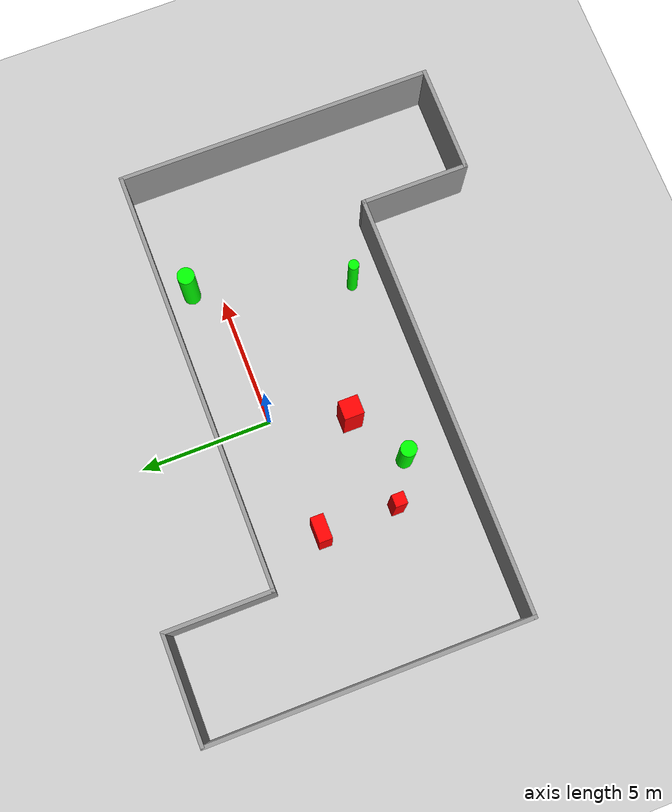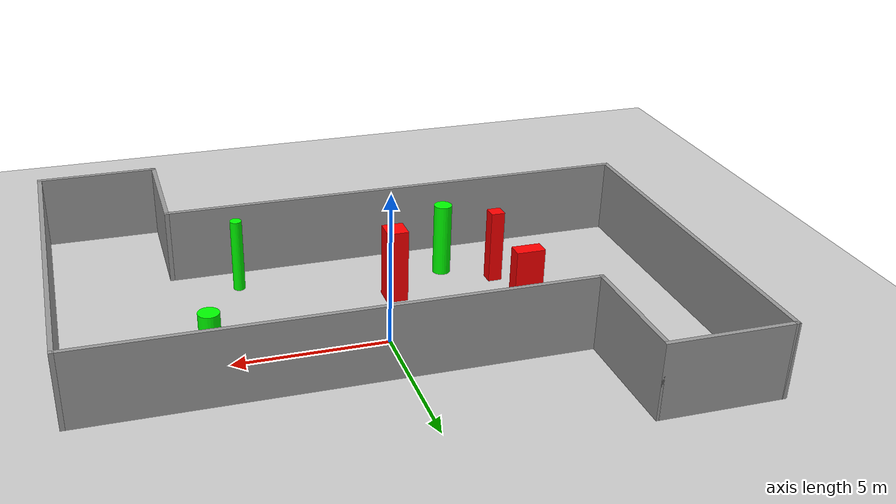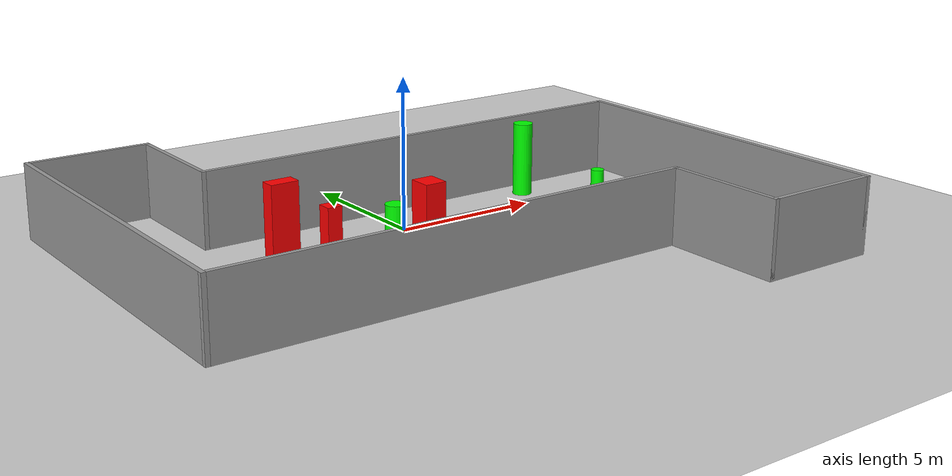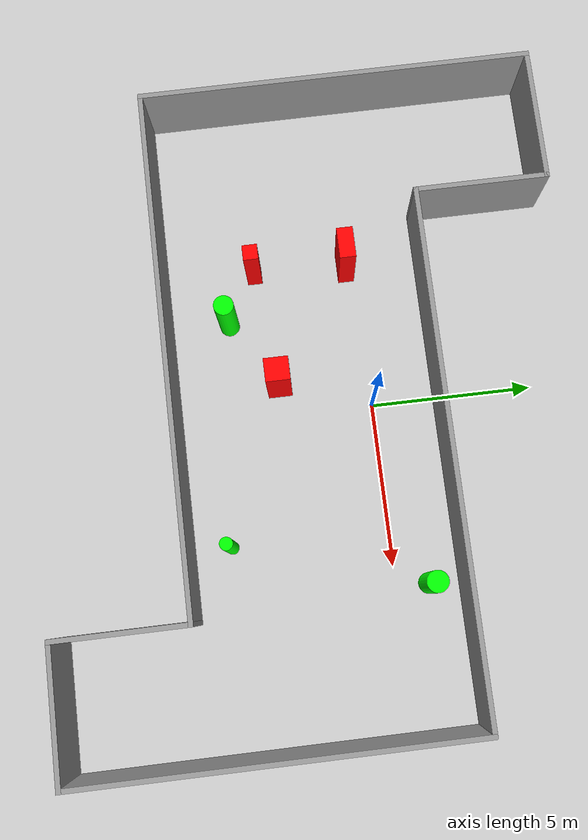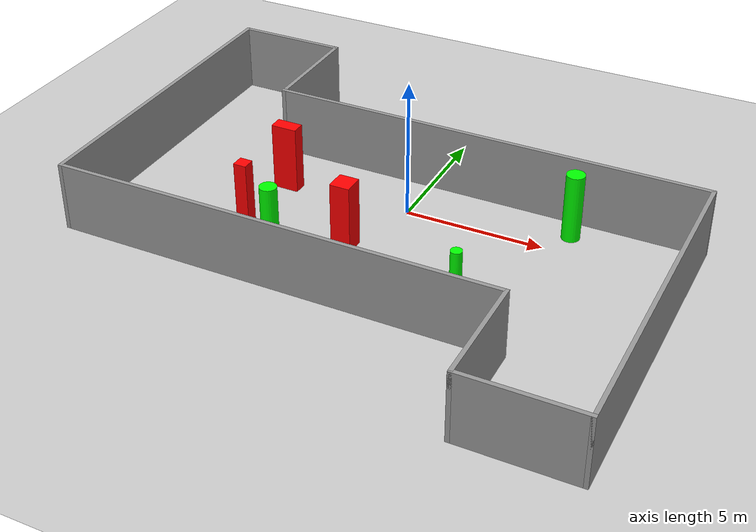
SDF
<sdf version="1.7">
 <world name="default">
  <light name="sun" type="directional">
   <pose>0 0 10 0 -0 0</pose>
   <diffuse>0.8 0.8 0.8 1</diffuse>
   <specular>0.2 0.2 0.2 1</specular>
   <attenuation>
    <range>1000</range>
    <constant>0.9</constant>
    <linear>0.01</linear>
    <quadratic>0.001</quadratic>
   </attenuation>
   <direction>-0.5 0.1 -0.9</direction>
   <spot><inner_angle>0</inner_angle><outer_angle>0</outer_angle><falloff>0</falloff></spot>
  </light>
  <model name="ground_plane">
   <static>1</static>
   <link name="link">
    <collision name="collision">
     <geometry><plane><normal>0 0 1</normal><size>100 100</size></plane></geometry>
     <surface>
      <contact><collide_bitmask>65535</collide_bitmask></contact>
      <friction><ode><mu>100</mu><mu2>50</mu2></ode></friction>
     </surface>
    </collision>
    <visual name="visual">
     <cast_shadows>0</cast_shadows>
     <geometry><plane><normal>0 0 1</normal><size>100 100</size></plane></geometry>
     <material>
      <script><uri>file://media/materials/scripts/gazebo.material</uri><name>Gazebo/Grey</name></script>
     </material>
    </visual>
   </link>
  </model>
  <gravity>0 0 -9.8</gravity>
  <magnetic_field>6e-06 2.3e-05 -4.2e-05</magnetic_field>
  <atmosphere type="adiabatic"/>
  <physics type="ode">
   <max_step_size>0.001</max_step_size>
   <real_time_factor>1</real_time_factor>
   <real_time_update_rate>1000</real_time_update_rate>
  </physics>
  <scene><ambient>0.4 0.4 0.4 1</ambient><background>0.7 0.7 0.7 1</background><shadows>1</shadows></scene>
  <spherical_coordinates>
   <surface_model>EARTH_WGS84</surface_model>
   <latitude_deg>0</latitude_deg>
   <longitude_deg>0</longitude_deg>
   <elevation>0</elevation>
   <heading_deg>0</heading_deg>
  </spherical_coordinates>
  <model name="my_base_walls">
   <link name="Wall_13">
    <collision name="Wall_13_Collision">
     <geometry><box><size>12.15 0.15 2.5</size></box></geometry>
     <pose>0 0 1.25 0 -0 0</pose>
    </collision>
    <visual name="Wall_13_Visual">
     <pose>0 0 1.25 0 -0 0</pose>
     <geometry><box><size>12.15 0.15 2.5</size></box></geometry>
     <material>
      <script><uri>file://media/materials/scripts/gazebo.material</uri><name>Gazebo/Grey</name></script>
      <ambient>1 1 1 1</ambient>
     </material>
     <meta><layer>0</layer></meta>
    </visual>
    <pose>10 -2 0 0 -0 1.5708</pose>
   </link>
   <link name="Wall_15">
    <collision name="Wall_15_Collision">
     <geometry><box><size>16.15 0.15 2.5</size></box></geometry>
     <pose>0 0 1.25 0 -0 0</pose>
    </collision>
    <visual name="Wall_15_Visual">
     <pose>0 0 1.25 0 -0 0</pose>
     <geometry><box><size>16.15 0.15 2.5</size></box></geometry>
     <material>
      <script><uri>file://media/materials/scripts/gazebo.material</uri><name>Gazebo/Grey</name></script>
      <ambient>1 1 1 1</ambient>
     </material>
     <meta><layer>0</layer></meta>
    </visual>
    <pose>2 4 0 0 -0 3.14159</pose>
   </link>
   <link name="Wall_17">
    <collision name="Wall_17_Collision">
     <geometry><box><size>4.15 0.15 2.5</size></box></geometry>
     <pose>0 0 1.25 0 -0 0</pose>
    </collision>
    <visual name="Wall_17_Visual">
     <pose>0 0 1.25 0 -0 0</pose>
     <geometry><box><size>4.15 0.15 2.5</size></box></geometry>
     <material>
      <script><uri>file://media/materials/scripts/gazebo.material</uri><name>Gazebo/Grey</name></script>
      <ambient>1 1 1 1</ambient>
     </material>
     <meta><layer>0</layer></meta>
    </visual>
    <pose>6 -6 0 0 -0 -1.5708</pose>
   </link>
   <link name="Wall_19">
    <collision name="Wall_19_Collision">
     <geometry><box><size>12.15 0.15 2.5</size></box></geometry>
     <pose>0 0 1.25 0 -0 0</pose>
    </collision>
    <visual name="Wall_19_Visual">
     <pose>0 0 1.25 0 -0 0</pose>
     <geometry><box><size>12.15 0.15 2.5</size></box></geometry>
     <material>
      <script><uri>file://media/materials/scripts/gazebo.material</uri><name>Gazebo/Grey</name></script>
      <ambient>1 1 1 1</ambient>
     </material>
     <meta><layer>0</layer></meta>
    </visual>
    <pose>-10 2 0 0 -0 1.5708</pose>
   </link>
   <link name="Wall_21">
    <collision name="Wall_21_Collision">
     <geometry><box><size>4.15 0.15 2.5</size></box></geometry>
     <pose>0 0 1.25 0 -0 0</pose>
    </collision>
    <visual name="Wall_21_Visual">
     <pose>0 0 1.25 0 -0 0</pose>
     <geometry><box><size>4.15 0.15 2.5</size></box></geometry>
     <material>
      <script><uri>file://media/materials/scripts/gazebo.material</uri><name>Gazebo/Grey</name></script>
      <ambient>1 1 1 1</ambient>
     </material>
     <meta><layer>0</layer></meta>
    </visual>
    <pose>-8 8 0 0 -0 0</pose>
   </link>
   <link name="Wall_23">
    <collision name="Wall_23_Collision">
     <geometry><box><size>4.15 0.15 2.5</size></box></geometry>
     <pose>0 0 1.25 0 -0 0</pose>
    </collision>
    <visual name="Wall_23_Visual">
     <pose>0 0 1.25 0 -0 0</pose>
     <geometry><box><size>4.15 0.15 2.5</size></box></geometry>
     <material>
      <script><uri>file://media/materials/scripts/gazebo.material</uri><name>Gazebo/Grey</name></script>
      <ambient>1 1 1 1</ambient>
     </material>
     <meta><layer>0</layer></meta>
    </visual>
    <pose>-6 6 0 0 -0 -1.5708</pose>
   </link>
   <link name="Wall_25">
    <collision name="Wall_25_Collision">
     <geometry><box><size>4.15 0.15 2.5</size></box></geometry>
     <pose>0 0 1.25 0 -0 0</pose>
    </collision>
    <visual name="Wall_25_Visual">
     <pose>0 0 1.25 0 -0 0</pose>
     <geometry><box><size>4.15 0.15 2.5</size></box></geometry>
     <material>
      <script><uri>file://media/materials/scripts/gazebo.material</uri><name>Gazebo/Grey</name></script>
      <ambient>1 1 1 1</ambient>
     </material>
     <meta><layer>0</layer></meta>
    </visual>
    <pose>8 -8 0 0 -0 0</pose>
   </link>
   <link name="Wall_9">
    <collision name="Wall_9_Collision">
     <geometry><box><size>16.15 0.15 2.5</size></box></geometry>
     <pose>0 0 1.25 0 -0 0</pose>
    </collision>
    <visual name="Wall_9_Visual">
     <pose>0 0 1.25 0 -0 0</pose>
     <geometry><box><size>16.15 0.15 2.5</size></box></geometry>
     <material>
      <script><uri>file://media/materials/scripts/gazebo.material</uri><name>Gazebo/Grey</name></script>
      <ambient>1 1 1 1</ambient>
     </material>
     <meta><layer>0</layer></meta>
    </visual>
    <pose>-2 -4 0 0 -0 3.14159</pose>
   </link>
   <static>1</static>
   <pose>-0 -2 0 0 -0 0</pose>
  </model>
  <model name="cylinder1">
   <static>1</static>
   <link name="link">
    <inertial>
     <mass>1</mass>
     <inertia><ixx>0.5</ixx><ixy>0</ixy><ixz>0</ixz><iyy>0.5</iyy><iyz>0</iyz><izz>1</izz></inertia>
    </inertial>
    <collision name="collision">
     <geometry><cylinder><radius>0.3035718407177613</radius><length>2.5</length></cylinder></geometry>
    </collision>
    <visual name="visual">
     <geometry><cylinder><radius>0.3035718407177613</radius><length>2.5</length></cylinder></geometry>
     <material>
      <ambient>0 1 0 1</ambient>
      <diffuse>0 1 0 1</diffuse>
      <specular>0.1 0.1 0.1 1</specular>
      <emissive>0 0 0 0</emissive>
     </material>
    </visual>
   </link>
   <pose>-3.082513961400586 -4.13988296449518 1.25 0 0 0</pose>
  </model>
  <model name="cylinder2">
   <static>1</static>
   <link name="link">
    <inertial>
     <mass>1</mass>
     <inertia><ixx>0.5</ixx><ixy>0</ixy><ixz>0</ixz><iyy>0.5</iyy><iyz>0</iyz><izz>1</izz></inertia>
    </inertial>
    <collision name="collision">
     <geometry><cylinder><radius>0.3250311329631301</radius><length>2.5</length></cylinder></geometry>
    </collision>
    <visual name="visual">
     <geometry><cylinder><radius>0.3250311329631301</radius><length>2.5</length></cylinder></geometry>
     <material>
      <ambient>0 1 0 1</ambient>
      <diffuse>0 1 0 1</diffuse>
      <specular>0.1 0.1 0.1 1</specular>
      <emissive>0 0 0 0</emissive>
     </material>
    </visual>
   </link>
   <pose>5.647744635297391 1.029591821394435 1.25 0 0 0</pose>
  </model>
  <model name="cylinder3">
   <static>1</static>
   <link name="link">
    <inertial>
     <mass>1</mass>
     <inertia><ixx>0.5</ixx><ixy>0</ixy><ixz>0</ixz><iyy>0.5</iyy><iyz>0</iyz><izz>1</izz></inertia>
    </inertial>
    <collision name="collision">
     <geometry><cylinder><radius>0.19764601192029063</radius><length>2.5</length></cylinder></geometry>
    </collision>
    <visual name="visual">
     <geometry><cylinder><radius>0.19764601192029063</radius><length>2.5</length></cylinder></geometry>
     <material>
      <ambient>0 1 0 1</ambient>
      <diffuse>0 1 0 1</diffuse>
      <specular>0.1 0.1 0.1 1</specular>
      <emissive>0 0 0 0</emissive>
     </material>
    </visual>
   </link>
   <pose>3.887006045403421 -4.784416667928466 1.25 0 0 0</pose>
  </model>
  <model name="box1">
   <static>1</static>
   <link name="link">
    <inertial>
     <mass>1</mass>
     <inertia><ixx>0.083</ixx><ixy>0</ixy><ixz>0</ixz><iyy>0.083</iyy><iyz>0</iyz><izz>0.083</izz></inertia>
    </inertial>
    <collision name="collision">
     <geometry><box><size>0.710372053022736 0.7409568018311314 2.5</size></box></geometry>
    </collision>
    <visual name="visual">
     <geometry><box><size>0.710372053022736 0.7409568018311314 2.5</size></box></geometry>
     <material>
      <ambient>1 0 0 1</ambient>
      <diffuse>1 0 0 1</diffuse>
      <specular>0.1 0.1 0.1 1</specular>
      <emissive>0 0 0 0</emissive>
     </material>
    </visual>
    <sensor name="my_contact" type="contact">
     <contact><collision>box_collision</collision><topic>__default_topic__</topic></contact>
    </sensor>
   </link>
   <pose>-0.9862277601458995 -2.7918089571336218 1.25 0 0 0</pose>
  </model>
  <model name="box2">
   <static>1</static>
   <link name="link">
    <inertial>
     <mass>1</mass>
     <inertia><ixx>0.083</ixx><ixy>0</ixy><ixz>0</ixz><iyy>0.083</iyy><iyz>0</iyz><izz>0.083</izz></inertia>
    </inertial>
    <collision name="collision">
     <geometry><box><size>0.935942847304619 0.4945776752229275 2.5</size></box></geometry>
    </collision>
    <visual name="visual">
     <geometry><box><size>0.935942847304619 0.4945776752229275 2.5</size></box></geometry>
     <material>
      <ambient>1 0 0 1</ambient>
      <diffuse>1 0 0 1</diffuse>
      <specular>0.1 0.1 0.1 1</specular>
      <emissive>0 0 0 0</emissive>
     </material>
    </visual>
    <sensor name="my_contact" type="contact">
     <contact><collision>box_collision</collision><topic>__default_topic__</topic></contact>
    </sensor>
   </link>
   <pose>-4.590211467000518 -0.2931726113446276 1.25 0 0 0</pose>
  </model>
  <model name="box3">
   <static>1</static>
   <link name="link">
    <inertial>
     <mass>1</mass>
     <inertia><ixx>0.083</ixx><ixy>0</ixy><ixz>0</ixz><iyy>0.083</iyy><iyz>0</iyz><izz>0.083</izz></inertia>
    </inertial>
    <collision name="collision">
     <geometry><box><size>0.46242136024988323 0.457483420498823 2.5</size></box></geometry>
    </collision>
    <visual name="visual">
     <geometry><box><size>0.46242136024988323 0.457483420498823 2.5</size></box></geometry>
     <material>
      <ambient>1 0 0 1</ambient>
      <diffuse>1 0 0 1</diffuse>
      <specular>0.1 0.1 0.1 1</specular>
      <emissive>0 0 0 0</emissive>
     </material>
    </visual>
    <sensor name="my_contact" type="contact">
     <contact><collision>box_collision</collision><topic>__default_topic__</topic></contact>
    </sensor>
   </link>
   <pose>-4.620976980000055 -3.1845561794148143 1.25 0 0 0</pose>
  </model>
 </world>
</sdf>
